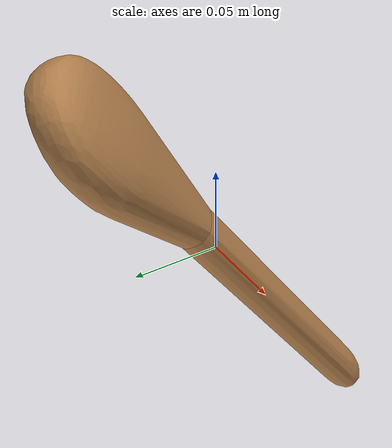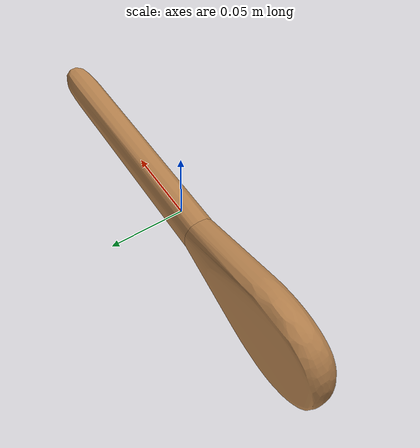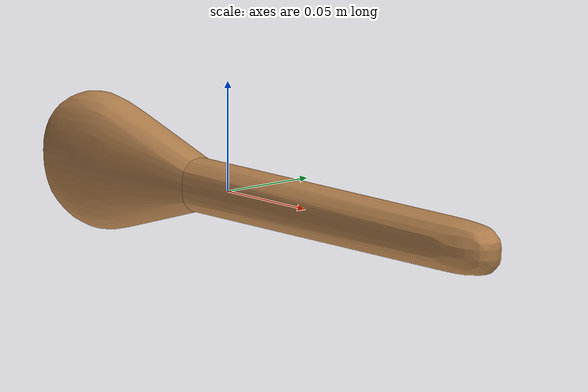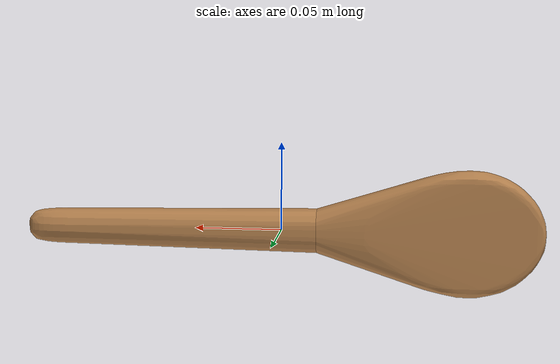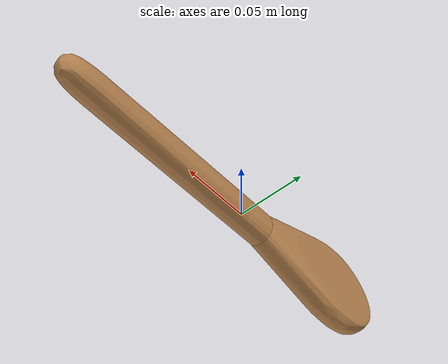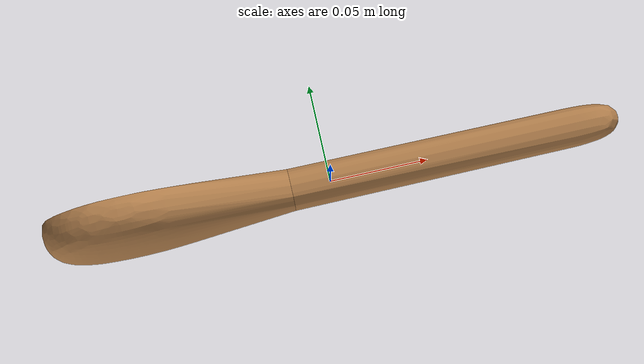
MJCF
<mujoco model="wooden-spoon">
  <asset>
    <texture file="./wooden-spoon/Material.wooden-spoon_Base_Color.png" name="tex-metal" type="2d" />
    <material name="wood" reflectance="0.5" texrepeat="1 1" texture="tex-metal" texuniform="false" />
    <material name="default_mat" rgba="0.2 0.2 0.2 1" specular="0.0" shininess="0.0"/>
    <mesh file="./wooden-spoon/wooden-spoon/wooden-spoon.obj" name="wooden-spoon_mesh" scale = "0.015 0.02 0.02"/>
    <mesh file="./wooden-spoon/wooden-spoon/wooden-spoon_collision_0.obj" name = "collision_0" scale = "0.015 0.02 0.02"/>
    <mesh file="./wooden-spoon/wooden-spoon/wooden-spoon_collision_1.obj" name = "collision_1" scale = "0.015 0.02 0.02"/>
  </asset>

  <default>
    <default class="visual">
      <geom group="1" type="mesh" contype="0" conaffinity="0"/>
    </default>
    <default class="collision">
      <geom group="0" type="mesh"/>
    </default>
  </default>

  <worldbody>
    <body >
    <body name="object" >
      <geom mesh="wooden-spoon_mesh" material="wood" class="visual" pos="0 0 0"/>
      <geom solimp="0.9 0.95 0.01" solref="0.02 1" density="200" friction="10.05 3.4 0.1" type="mesh" mesh="collision_0" class="collision" material="wood" />
      <geom solimp="0.9 0.95 0.01" solref="0.02 1" density="200" friction="10.05 3.4 0.1" type="mesh" mesh="collision_1" class="collision" material="wood" />

        <inertial mass="1.0" pos="0 0 0" diaginertia="0.5 0.5 0.5" />
    </body>

    <site rgba="0 0 0 0" size="0.005" pos="0 0 -0.02" name="bottom_site" />
    <site rgba="0 0 0 0" size="0.005" pos="0 0 0.02" name="top_site" />
    <site rgba="0 0 0 0" size="0.005" pos="0.02 0.02 0" name="horizontal_radius_site" />
    </body>
  </worldbody>
</mujoco>
